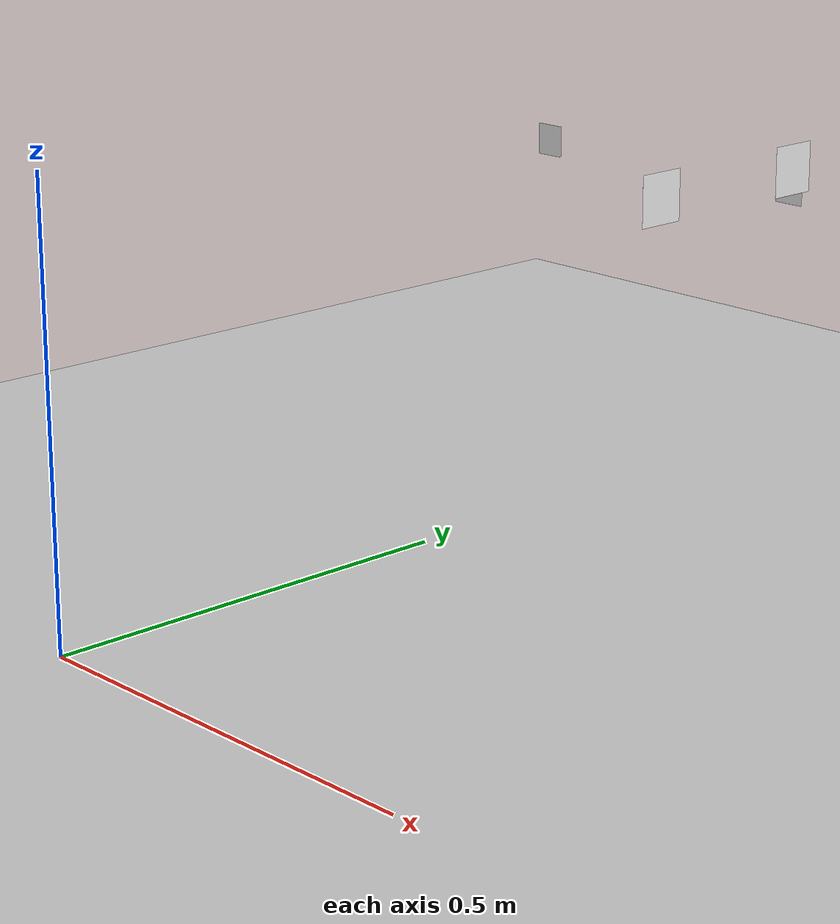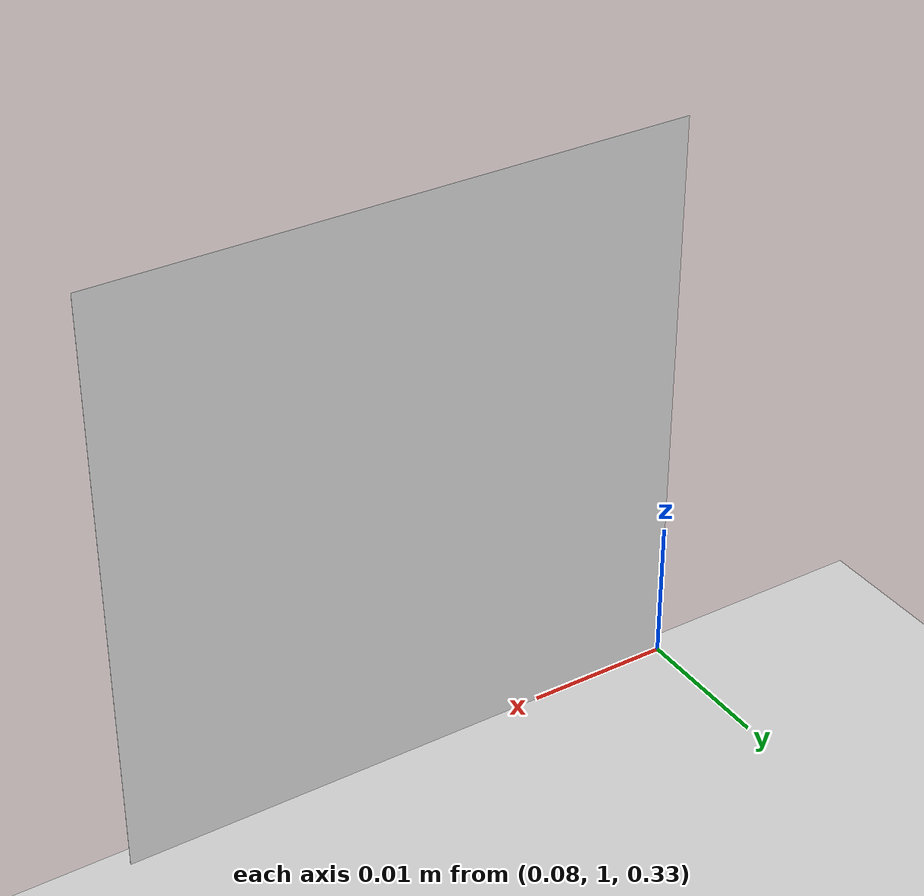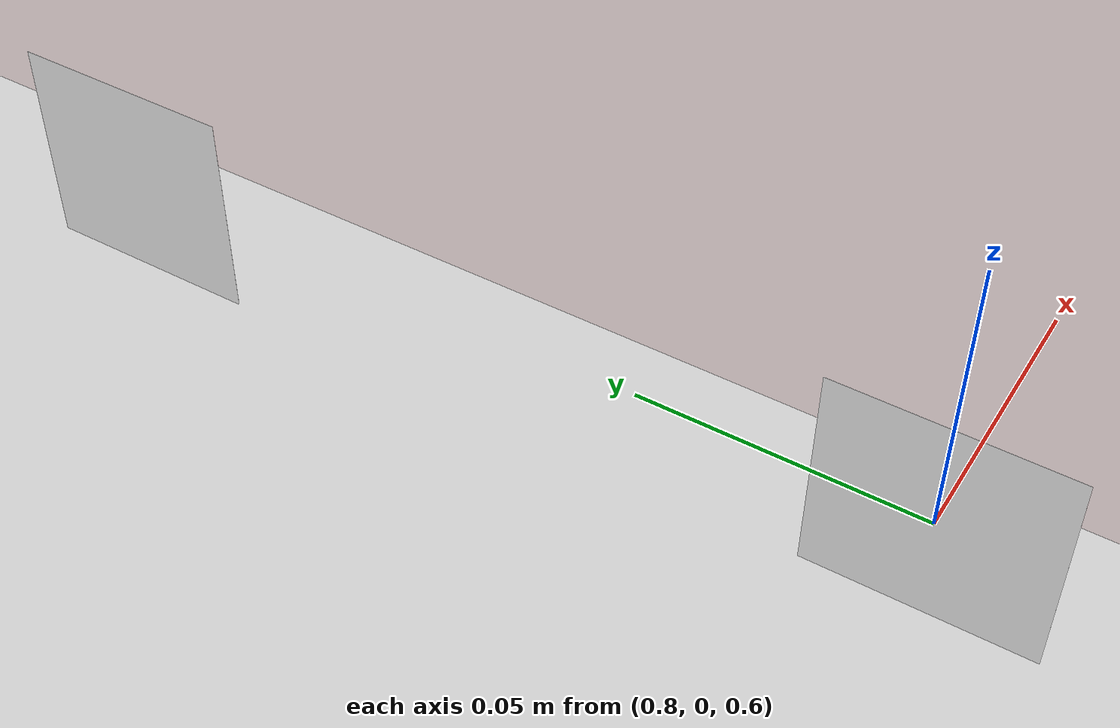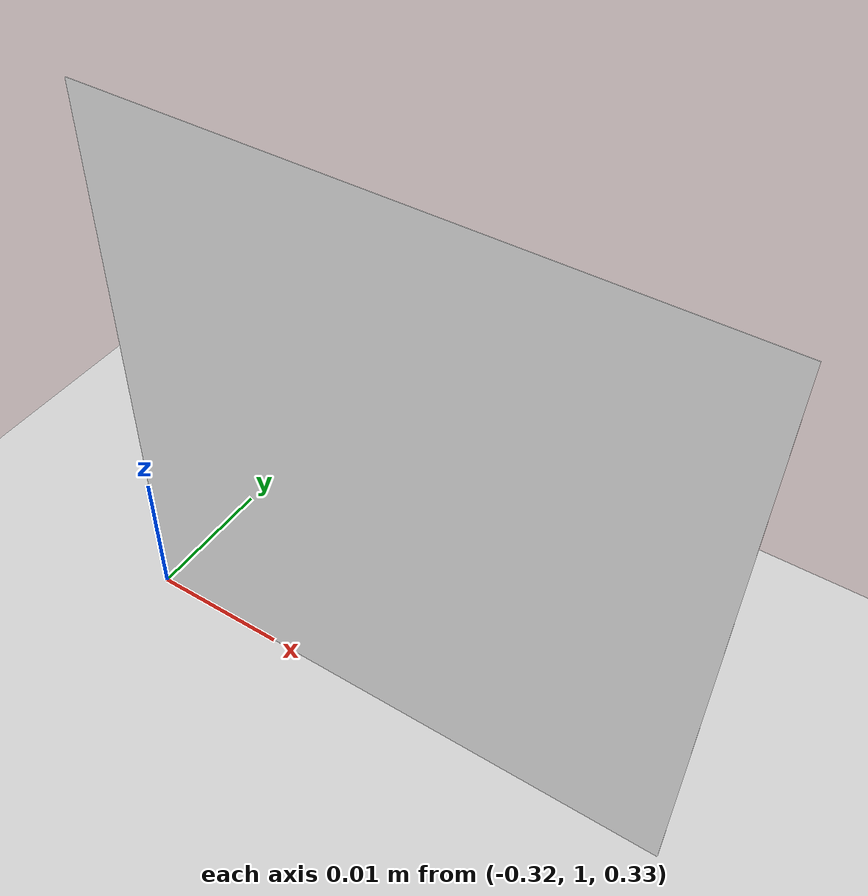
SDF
<sdf version="1.6">
 <world name="default">
  <light name="sun" type="directional">
   <pose>0 0 10 0 -0 0</pose>
   <diffuse>0.8 0.8 0.8 1</diffuse>
   <specular>0.2 0.2 0.2 1</specular>
   <attenuation>
    <range>1000</range>
    <constant>0.9</constant>
    <linear>0.01</linear>
    <quadratic>0.001</quadratic>
   </attenuation>
   <direction>-0.5 0.1 -0.9</direction>
  </light>
  <model name="ground_plane">
   <static>1</static>
   <link name="link">
    <collision name="collision">
     <geometry><plane><normal>0 0 1</normal><size>100 100</size></plane></geometry>
     <surface>
      <contact><collide_bitmask>65535</collide_bitmask></contact>
      <friction><ode><mu>100</mu><mu2>50</mu2></ode></friction>
     </surface>
    </collision>
    <visual name="visual">
     <cast_shadows>0</cast_shadows>
     <geometry><plane><normal>0 0 1</normal><size>100 100</size></plane></geometry>
     <material>
      <script><uri>file://media/materials/scripts/gazebo.material</uri><name>Gazebo/Grey</name></script>
     </material>
    </visual>
   </link>
  </model>
  <gravity>0 0 -9.8</gravity>
  <magnetic_field>6e-06 2.3e-05 -4.2e-05</magnetic_field>
  <atmosphere type="adiabatic"/>
  <physics name="default_physics" default="0" type="ode">
   <max_step_size>0.001</max_step_size>
   <real_time_factor>1</real_time_factor>
   <real_time_update_rate>1000</real_time_update_rate>
  </physics>
  <scene><ambient>0.4 0.4 0.4 1</ambient><background>0.7 0.7 0.7 1</background><shadows>1</shadows></scene>
  <audio><device>default</device></audio>
  <spherical_coordinates>
   <surface_model>EARTH_WGS84</surface_model>
   <latitude_deg>0</latitude_deg>
   <longitude_deg>0</longitude_deg>
   <elevation>0</elevation>
   <heading_deg>0</heading_deg>
  </spherical_coordinates>
  <model name="aruco_visual_marker_0">
   <link name="marker">
    <visual name="visual">
     <geometry><box><size>0.04 0.04 1e-05</size></box></geometry>
     <material>
      <script>
       <uri>model://aruco_visual_marker_0/materials/scripts</uri>
       <uri>model://aruco_visual_marker_0/materials/textures</uri>
       <name>ArucoVisualMarker0/Marker</name>
      </script>
      <ambient>1 1 1 1</ambient>
      <diffuse>1 1 1 1</diffuse>
      <specular>0 0 0 1</specular>
      <emissive>1 1 1 0</emissive>
      <shader type="vertex"><normal_map>__default__</normal_map></shader>
     </material>
    </visual>
   </link>
   <link name="marker_pad">
    <pose frame="marker">0 0 -1e-05 0 -0 0</pose>
    <visual name="visual">
     <geometry><box><size>0.04 0.04 1e-05</size></box></geometry>
     <material>
      <lighting>1</lighting>
      <script><uri>file://media/materials/scripts/gazebo.material</uri><name>Gazebo/White</name></script>
      <ambient>0.3 0.3 0.3 1</ambient>
      <diffuse>0.7 0.7 0.7 1</diffuse>
      <specular>0.01 0.01 0.01 1</specular>
      <emissive>1 1 1 0</emissive>
      <shader type="vertex"><normal_map>__default__</normal_map></shader>
     </material>
    </visual>
   </link>
   <joint name="marker_JOINT_marker_pad" type="revolute">
    <parent>marker</parent>
    <child>marker_pad</child>
    <axis>
     <xyz>0 0 1</xyz>
     <limit><upper>0</upper><lower>0</lower></limit>
     <use_parent_model_frame>0</use_parent_model_frame>
     <dynamics><spring_reference>0</spring_reference><spring_stiffness>0</spring_stiffness></dynamics>
    </axis>
   </joint>
   <static>1</static>
   <pose>0.8 0.15 0.6 3.14159 -1.57079 3.14159</pose>
  </model>
  <model name="aruco_visual_marker_100">
   <link name="marker">
    <visual name="visual">
     <geometry><box><size>0.04 0.04 1e-05</size></box></geometry>
     <material>
      <script>
       <uri>model://aruco_visual_marker_100/materials/scripts</uri>
       <uri>model://aruco_visual_marker_100/materials/textures</uri>
       <name>ArucoVisualMarker100/Marker</name>
      </script>
      <ambient>1 1 1 1</ambient>
      <diffuse>1 1 1 1</diffuse>
      <specular>0 0 0 1</specular>
      <emissive>1 1 1 0</emissive>
      <shader type="vertex"><normal_map>__default__</normal_map></shader>
     </material>
    </visual>
   </link>
   <link name="marker_pad">
    <pose frame="marker">0 0 -1e-05 0 -0 0</pose>
    <visual name="visual">
     <geometry><box><size>0.04 0.04 1e-05</size></box></geometry>
     <material>
      <lighting>1</lighting>
      <script><uri>file://media/materials/scripts/gazebo.material</uri><name>Gazebo/White</name></script>
      <ambient>0.3 0.3 0.3 1</ambient>
      <diffuse>0.7 0.7 0.7 1</diffuse>
      <specular>0.01 0.01 0.01 1</specular>
      <emissive>1 1 1 0</emissive>
      <shader type="vertex"><normal_map>__default__</normal_map></shader>
     </material>
    </visual>
   </link>
   <joint name="marker_JOINT_marker_pad" type="revolute">
    <parent>marker</parent>
    <child>marker_pad</child>
    <axis>
     <xyz>0 0 1</xyz>
     <limit><upper>0</upper><lower>0</lower></limit>
     <use_parent_model_frame>0</use_parent_model_frame>
     <dynamics><spring_reference>0</spring_reference><spring_stiffness>0</spring_stiffness></dynamics>
    </axis>
   </joint>
   <static>1</static>
   <pose>0.1 1 0.35 2.9997 -1.57079 -1.4289</pose>
  </model>
  <model name="aruco_visual_marker_101">
   <link name="marker">
    <visual name="visual">
     <geometry><box><size>0.04 0.04 1e-05</size></box></geometry>
     <material>
      <script>
       <uri>model://aruco_visual_marker_101/materials/scripts</uri>
       <uri>model://aruco_visual_marker_101/materials/textures</uri>
       <name>ArucoVisualMarker101/Marker</name>
      </script>
      <ambient>1 1 1 1</ambient>
      <diffuse>1 1 1 1</diffuse>
      <specular>0 0 0 1</specular>
      <emissive>1 1 1 0</emissive>
      <shader type="vertex"><normal_map>__default__</normal_map></shader>
     </material>
    </visual>
   </link>
   <link name="marker_pad">
    <pose frame="marker">0 0 -1e-05 0 -0 0</pose>
    <visual name="visual">
     <geometry><box><size>0.04 0.04 1e-05</size></box></geometry>
     <material>
      <lighting>1</lighting>
      <script><uri>file://media/materials/scripts/gazebo.material</uri><name>Gazebo/White</name></script>
      <ambient>0.3 0.3 0.3 1</ambient>
      <diffuse>0.7 0.7 0.7 1</diffuse>
      <specular>0.01 0.01 0.01 1</specular>
      <emissive>1 1 1 0</emissive>
      <shader type="vertex"><normal_map>__default__</normal_map></shader>
     </material>
    </visual>
   </link>
   <joint name="marker_JOINT_marker_pad" type="revolute">
    <parent>marker</parent>
    <child>marker_pad</child>
    <axis>
     <xyz>0 0 1</xyz>
     <limit><upper>0</upper><lower>0</lower></limit>
     <use_parent_model_frame>0</use_parent_model_frame>
     <dynamics><spring_reference>0</spring_reference><spring_stiffness>0</spring_stiffness></dynamics>
    </axis>
   </joint>
   <static>1</static>
   <pose>-0.3 1 0.35 -0 -1.57079 1.57</pose>
  </model>
  <model name="aruco_visual_marker_1">
   <link name="marker">
    <visual name="visual">
     <geometry><box><size>0.04 0.04 1e-05</size></box></geometry>
     <material>
      <script>
       <uri>model://aruco_visual_marker_1/materials/scripts</uri>
       <uri>model://aruco_visual_marker_1/materials/textures</uri>
       <name>ArucoVisualMarker1/Marker</name>
      </script>
      <ambient>1 1 1 1</ambient>
      <diffuse>1 1 1 1</diffuse>
      <specular>0 0 0 1</specular>
      <emissive>1 1 1 0</emissive>
      <shader type="vertex"><normal_map>__default__</normal_map></shader>
     </material>
    </visual>
   </link>
   <link name="marker_pad">
    <pose frame="marker">0 0 -1e-05 0 -0 0</pose>
    <visual name="visual">
     <geometry><box><size>0.04 0.04 1e-05</size></box></geometry>
     <material>
      <lighting>1</lighting>
      <script><uri>file://media/materials/scripts/gazebo.material</uri><name>Gazebo/White</name></script>
      <ambient>0.3 0.3 0.3 1</ambient>
      <diffuse>0.7 0.7 0.7 1</diffuse>
      <specular>0.01 0.01 0.01 1</specular>
      <emissive>1 1 1 0</emissive>
      <shader type="vertex"><normal_map>__default__</normal_map></shader>
     </material>
    </visual>
   </link>
   <joint name="marker_JOINT_marker_pad" type="revolute">
    <parent>marker</parent>
    <child>marker_pad</child>
    <axis>
     <xyz>0 0 1</xyz>
     <limit><upper>0</upper><lower>0</lower></limit>
     <use_parent_model_frame>0</use_parent_model_frame>
     <dynamics><spring_reference>0</spring_reference><spring_stiffness>0</spring_stiffness></dynamics>
    </axis>
   </joint>
   <static>1</static>
   <pose>0.8 0 0.6 0 -1.57 0</pose>
  </model>
 </world>
</sdf>
